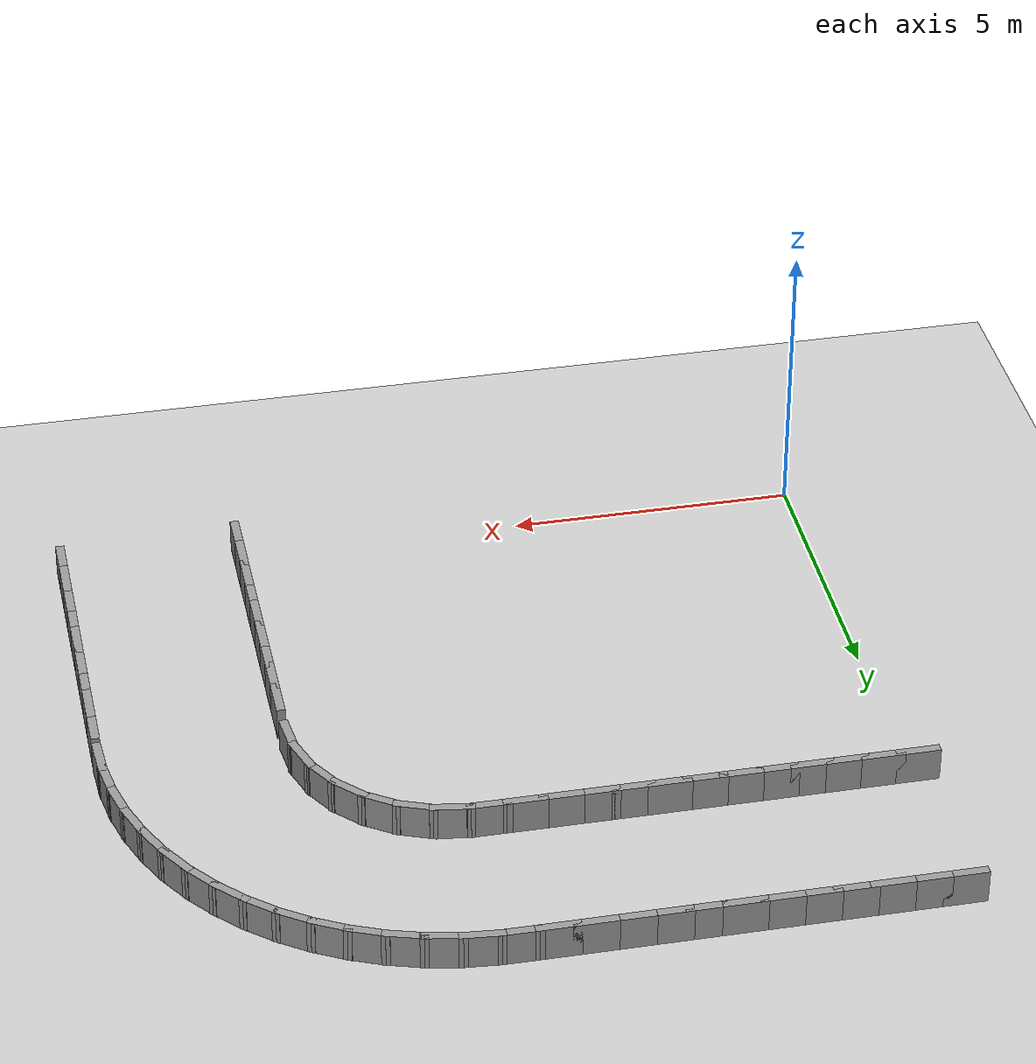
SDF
<sdf version="1.7">
 <world name="default">
  <model name="ground_plane">
   <static>1</static>
   <link name="link">
    <collision name="collision">
     <geometry><plane><normal>0 0 1</normal><size>100 100</size></plane></geometry>
     <surface><friction><ode><mu>100</mu><mu2>50</mu2></ode></friction></surface>
    </collision>
    <visual name="visual">
     <cast_shadows>0</cast_shadows>
     <geometry><plane><normal>0 0 1</normal><size>100 100</size></plane></geometry>
     <material>
      <script><uri>file://media/materials/scripts/gazebo.material</uri><name>Gazebo/Grey</name></script>
     </material>
    </visual>
   </link>
  </model>
  <model name="rand_rrect_01">
   <link name="Wall_0">
    <collision name="Wall_0_Collision">
     <geometry><box><size>0.7488 0.1500 0.6000</size></box></geometry>
     <pose>0 0 0.3000 0 -0 0</pose>
    </collision>
    <visual name="Wall_0_Visual">
     <pose>0 0 0.3000 0 -0 0</pose>
     <geometry><box><size>0.7488 0.1500 0.6000</size></box></geometry>
     <material>
      <script><uri>file://media/materials/scripts/gazebo.material</uri><name>Gazebo/Grey</name></script>
      <ambient>1 1 1 1</ambient>
     </material>
    </visual>
    <pose>10.0239 5.8810 0 0 -0 1.68030</pose>
   </link>
   <link name="Wall_1">
    <collision name="Wall_1_Collision">
     <geometry><box><size>0.7488 0.1500 0.6000</size></box></geometry>
     <pose>0 0 0.3000 0 -0 0</pose>
    </collision>
    <visual name="Wall_1_Visual">
     <pose>0 0 0.3000 0 -0 0</pose>
     <geometry><box><size>0.7488 0.1500 0.6000</size></box></geometry>
     <material>
      <script><uri>file://media/materials/scripts/gazebo.material</uri><name>Gazebo/Grey</name></script>
      <ambient>1 1 1 1</ambient>
     </material>
    </visual>
    <pose>9.8946 6.4620 0 0 -0 1.89928</pose>
   </link>
   <link name="Wall_2">
    <collision name="Wall_2_Collision">
     <geometry><box><size>0.7488 0.1500 0.6000</size></box></geometry>
     <pose>0 0 0.3000 0 -0 0</pose>
    </collision>
    <visual name="Wall_2_Visual">
     <pose>0 0 0.3000 0 -0 0</pose>
     <geometry><box><size>0.7488 0.1500 0.6000</size></box></geometry>
     <material>
      <script><uri>file://media/materials/scripts/gazebo.material</uri><name>Gazebo/Grey</name></script>
      <ambient>1 1 1 1</ambient>
     </material>
    </visual>
    <pose>9.6421 7.0011 0 0 -0 2.11827</pose>
   </link>
   <link name="Wall_3">
    <collision name="Wall_3_Collision">
     <geometry><box><size>0.7488 0.1500 0.6000</size></box></geometry>
     <pose>0 0 0.3000 0 -0 0</pose>
    </collision>
    <visual name="Wall_3_Visual">
     <pose>0 0 0.3000 0 -0 0</pose>
     <geometry><box><size>0.7488 0.1500 0.6000</size></box></geometry>
     <material>
      <script><uri>file://media/materials/scripts/gazebo.material</uri><name>Gazebo/Grey</name></script>
      <ambient>1 1 1 1</ambient>
     </material>
    </visual>
    <pose>9.2786 7.4724 0 0 -0 2.33728</pose>
   </link>
   <link name="Wall_4">
    <collision name="Wall_4_Collision">
     <geometry><box><size>0.7488 0.1500 0.6000</size></box></geometry>
     <pose>0 0 0.3000 0 -0 0</pose>
    </collision>
    <visual name="Wall_4_Visual">
     <pose>0 0 0.3000 0 -0 0</pose>
     <geometry><box><size>0.7488 0.1500 0.6000</size></box></geometry>
     <material>
      <script><uri>file://media/materials/scripts/gazebo.material</uri><name>Gazebo/Grey</name></script>
      <ambient>1 1 1 1</ambient>
     </material>
    </visual>
    <pose>8.8214 7.8535 0 0 -0 2.55626</pose>
   </link>
   <link name="Wall_5">
    <collision name="Wall_5_Collision">
     <geometry><box><size>0.7488 0.1500 0.6000</size></box></geometry>
     <pose>0 0 0.3000 0 -0 0</pose>
    </collision>
    <visual name="Wall_5_Visual">
     <pose>0 0 0.3000 0 -0 0</pose>
     <geometry><box><size>0.7488 0.1500 0.6000</size></box></geometry>
     <material>
      <script><uri>file://media/materials/scripts/gazebo.material</uri><name>Gazebo/Grey</name></script>
      <ambient>1 1 1 1</ambient>
     </material>
    </visual>
    <pose>8.2923 8.1261 0 0 -0 2.77525</pose>
   </link>
   <link name="Wall_6">
    <collision name="Wall_6_Collision">
     <geometry><box><size>0.7488 0.1500 0.6000</size></box></geometry>
     <pose>0 0 0.3000 0 -0 0</pose>
    </collision>
    <visual name="Wall_6_Visual">
     <pose>0 0 0.3000 0 -0 0</pose>
     <geometry><box><size>0.7488 0.1500 0.6000</size></box></geometry>
     <material>
      <script><uri>file://media/materials/scripts/gazebo.material</uri><name>Gazebo/Grey</name></script>
      <ambient>1 1 1 1</ambient>
     </material>
    </visual>
    <pose>7.7166 8.2773 0 0 -0 2.99426</pose>
   </link>
   <link name="Wall_7">
    <collision name="Wall_7_Collision">
     <geometry><box><size>0.7500 0.1500 0.6000</size></box></geometry>
     <pose>0 0 0.3000 0 -0 0</pose>
    </collision>
    <visual name="Wall_7_Visual">
     <pose>0 0 0.3000 0 -0 0</pose>
     <geometry><box><size>0.7500 0.1500 0.6000</size></box></geometry>
     <material>
      <script><uri>file://media/materials/scripts/gazebo.material</uri><name>Gazebo/Grey</name></script>
      <ambient>1 1 1 1</ambient>
     </material>
    </visual>
    <pose>7.1205 8.3223 0 0 -0 3.13831</pose>
   </link>
   <link name="Wall_8">
    <collision name="Wall_8_Collision">
     <geometry><box><size>0.7500 0.1500 0.6000</size></box></geometry>
     <pose>0 0 0.3000 0 -0 0</pose>
    </collision>
    <visual name="Wall_8_Visual">
     <pose>0 0 0.3000 0 -0 0</pose>
     <geometry><box><size>0.7500 0.1500 0.6000</size></box></geometry>
     <material>
      <script><uri>file://media/materials/scripts/gazebo.material</uri><name>Gazebo/Grey</name></script>
      <ambient>1 1 1 1</ambient>
     </material>
    </visual>
    <pose>6.5205 8.3232 0 0 -0 3.14159</pose>
   </link>
   <link name="Wall_9">
    <collision name="Wall_9_Collision">
     <geometry><box><size>0.7500 0.1500 0.6000</size></box></geometry>
     <pose>0 0 0.3000 0 -0 0</pose>
    </collision>
    <visual name="Wall_9_Visual">
     <pose>0 0 0.3000 0 -0 0</pose>
     <geometry><box><size>0.7500 0.1500 0.6000</size></box></geometry>
     <material>
      <script><uri>file://media/materials/scripts/gazebo.material</uri><name>Gazebo/Grey</name></script>
      <ambient>1 1 1 1</ambient>
     </material>
    </visual>
    <pose>5.9205 8.3232 0 0 -0 3.14159</pose>
   </link>
   <link name="Wall_10">
    <collision name="Wall_10_Collision">
     <geometry><box><size>0.7500 0.1500 0.6000</size></box></geometry>
     <pose>0 0 0.3000 0 -0 0</pose>
    </collision>
    <visual name="Wall_10_Visual">
     <pose>0 0 0.3000 0 -0 0</pose>
     <geometry><box><size>0.7500 0.1500 0.6000</size></box></geometry>
     <material>
      <script><uri>file://media/materials/scripts/gazebo.material</uri><name>Gazebo/Grey</name></script>
      <ambient>1 1 1 1</ambient>
     </material>
    </visual>
    <pose>5.3205 8.3232 0 0 -0 3.14159</pose>
   </link>
   <link name="Wall_11">
    <collision name="Wall_11_Collision">
     <geometry><box><size>0.7500 0.1500 0.6000</size></box></geometry>
     <pose>0 0 0.3000 0 -0 0</pose>
    </collision>
    <visual name="Wall_11_Visual">
     <pose>0 0 0.3000 0 -0 0</pose>
     <geometry><box><size>0.7500 0.1500 0.6000</size></box></geometry>
     <material>
      <script><uri>file://media/materials/scripts/gazebo.material</uri><name>Gazebo/Grey</name></script>
      <ambient>1 1 1 1</ambient>
     </material>
    </visual>
    <pose>4.7205 8.3232 0 0 -0 3.14159</pose>
   </link>
   <link name="Wall_12">
    <collision name="Wall_12_Collision">
     <geometry><box><size>0.7500 0.1500 0.6000</size></box></geometry>
     <pose>0 0 0.3000 0 -0 0</pose>
    </collision>
    <visual name="Wall_12_Visual">
     <pose>0 0 0.3000 0 -0 0</pose>
     <geometry><box><size>0.7500 0.1500 0.6000</size></box></geometry>
     <material>
      <script><uri>file://media/materials/scripts/gazebo.material</uri><name>Gazebo/Grey</name></script>
      <ambient>1 1 1 1</ambient>
     </material>
    </visual>
    <pose>4.1205 8.3232 0 0 -0 3.14159</pose>
   </link>
   <link name="Wall_13">
    <collision name="Wall_13_Collision">
     <geometry><box><size>0.7500 0.1500 0.6000</size></box></geometry>
     <pose>0 0 0.3000 0 -0 0</pose>
    </collision>
    <visual name="Wall_13_Visual">
     <pose>0 0 0.3000 0 -0 0</pose>
     <geometry><box><size>0.7500 0.1500 0.6000</size></box></geometry>
     <material>
      <script><uri>file://media/materials/scripts/gazebo.material</uri><name>Gazebo/Grey</name></script>
      <ambient>1 1 1 1</ambient>
     </material>
    </visual>
    <pose>3.5205 8.3232 0 0 -0 3.14159</pose>
   </link>
   <link name="Wall_14">
    <collision name="Wall_14_Collision">
     <geometry><box><size>0.7500 0.1500 0.6000</size></box></geometry>
     <pose>0 0 0.3000 0 -0 0</pose>
    </collision>
    <visual name="Wall_14_Visual">
     <pose>0 0 0.3000 0 -0 0</pose>
     <geometry><box><size>0.7500 0.1500 0.6000</size></box></geometry>
     <material>
      <script><uri>file://media/materials/scripts/gazebo.material</uri><name>Gazebo/Grey</name></script>
      <ambient>1 1 1 1</ambient>
     </material>
    </visual>
    <pose>2.9205 8.3232 0 0 -0 3.14159</pose>
   </link>
   <link name="Wall_15">
    <collision name="Wall_15_Collision">
     <geometry><box><size>0.7500 0.1500 0.6000</size></box></geometry>
     <pose>0 0 0.3000 0 -0 0</pose>
    </collision>
    <visual name="Wall_15_Visual">
     <pose>0 0 0.3000 0 -0 0</pose>
     <geometry><box><size>0.7500 0.1500 0.6000</size></box></geometry>
     <material>
      <script><uri>file://media/materials/scripts/gazebo.material</uri><name>Gazebo/Grey</name></script>
      <ambient>1 1 1 1</ambient>
     </material>
    </visual>
    <pose>2.3205 8.3232 0 0 -0 3.14159</pose>
   </link>
   <link name="Wall_16">
    <collision name="Wall_16_Collision">
     <geometry><box><size>0.7500 0.1500 0.6000</size></box></geometry>
     <pose>0 0 0.3000 0 -0 0</pose>
    </collision>
    <visual name="Wall_16_Visual">
     <pose>0 0 0.3000 0 -0 0</pose>
     <geometry><box><size>0.7500 0.1500 0.6000</size></box></geometry>
     <material>
      <script><uri>file://media/materials/scripts/gazebo.material</uri><name>Gazebo/Grey</name></script>
      <ambient>1 1 1 1</ambient>
     </material>
    </visual>
    <pose>1.7205 8.3232 0 0 -0 3.14159</pose>
   </link>
   <link name="Wall_17">
    <collision name="Wall_17_Collision">
     <geometry><box><size>0.7500 0.1500 0.6000</size></box></geometry>
     <pose>0 0 0.3000 0 -0 0</pose>
    </collision>
    <visual name="Wall_17_Visual">
     <pose>0 0 0.3000 0 -0 0</pose>
     <geometry><box><size>0.7500 0.1500 0.6000</size></box></geometry>
     <material>
      <script><uri>file://media/materials/scripts/gazebo.material</uri><name>Gazebo/Grey</name></script>
      <ambient>1 1 1 1</ambient>
     </material>
    </visual>
    <pose>1.1205 8.3232 0 0 -0 3.14159</pose>
   </link>
   <link name="Wall_18">
    <collision name="Wall_18_Collision">
     <geometry><box><size>0.7500 0.1500 0.6000</size></box></geometry>
     <pose>0 0 0.3000 0 -0 0</pose>
    </collision>
    <visual name="Wall_18_Visual">
     <pose>0 0 0.3000 0 -0 0</pose>
     <geometry><box><size>0.7500 0.1500 0.6000</size></box></geometry>
     <material>
      <script><uri>file://media/materials/scripts/gazebo.material</uri><name>Gazebo/Grey</name></script>
      <ambient>1 1 1 1</ambient>
     </material>
    </visual>
    <pose>0.5205 8.3232 0 0 -0 3.14159</pose>
   </link>
   <link name="Wall_19">
    <collision name="Wall_19_Collision">
     <geometry><box><size>0.7500 0.1500 0.6000</size></box></geometry>
     <pose>0 0 0.3000 0 -0 0</pose>
    </collision>
    <visual name="Wall_19_Visual">
     <pose>0 0 0.3000 0 -0 0</pose>
     <geometry><box><size>0.7500 0.1500 0.6000</size></box></geometry>
     <material>
      <script><uri>file://media/materials/scripts/gazebo.material</uri><name>Gazebo/Grey</name></script>
      <ambient>1 1 1 1</ambient>
     </material>
    </visual>
    <pose>-0.0795 8.3232 0 0 -0 3.14159</pose>
   </link>
   <link name="Wall_105">
    <collision name="Wall_105_Collision">
     <geometry><box><size>0.7500 0.1500 0.6000</size></box></geometry>
     <pose>0 0 0.3000 0 -0 0</pose>
    </collision>
    <visual name="Wall_105_Visual">
     <pose>0 0 0.3000 0 -0 0</pose>
     <geometry><box><size>0.7500 0.1500 0.6000</size></box></geometry>
     <material>
      <script><uri>file://media/materials/scripts/gazebo.material</uri><name>Gazebo/Grey</name></script>
      <ambient>1 1 1 1</ambient>
     </material>
    </visual>
    <pose>10.0566 0.0678 0 0 -0 1.57080</pose>
   </link>
   <link name="Wall_106">
    <collision name="Wall_106_Collision">
     <geometry><box><size>0.7500 0.1500 0.6000</size></box></geometry>
     <pose>0 0 0.3000 0 -0 0</pose>
    </collision>
    <visual name="Wall_106_Visual">
     <pose>0 0 0.3000 0 -0 0</pose>
     <geometry><box><size>0.7500 0.1500 0.6000</size></box></geometry>
     <material>
      <script><uri>file://media/materials/scripts/gazebo.material</uri><name>Gazebo/Grey</name></script>
      <ambient>1 1 1 1</ambient>
     </material>
    </visual>
    <pose>10.0566 0.6678 0 0 -0 1.57080</pose>
   </link>
   <link name="Wall_107">
    <collision name="Wall_107_Collision">
     <geometry><box><size>0.7500 0.1500 0.6000</size></box></geometry>
     <pose>0 0 0.3000 0 -0 0</pose>
    </collision>
    <visual name="Wall_107_Visual">
     <pose>0 0 0.3000 0 -0 0</pose>
     <geometry><box><size>0.7500 0.1500 0.6000</size></box></geometry>
     <material>
      <script><uri>file://media/materials/scripts/gazebo.material</uri><name>Gazebo/Grey</name></script>
      <ambient>1 1 1 1</ambient>
     </material>
    </visual>
    <pose>10.0566 1.2678 0 0 -0 1.57080</pose>
   </link>
   <link name="Wall_108">
    <collision name="Wall_108_Collision">
     <geometry><box><size>0.7500 0.1500 0.6000</size></box></geometry>
     <pose>0 0 0.3000 0 -0 0</pose>
    </collision>
    <visual name="Wall_108_Visual">
     <pose>0 0 0.3000 0 -0 0</pose>
     <geometry><box><size>0.7500 0.1500 0.6000</size></box></geometry>
     <material>
      <script><uri>file://media/materials/scripts/gazebo.material</uri><name>Gazebo/Grey</name></script>
      <ambient>1 1 1 1</ambient>
     </material>
    </visual>
    <pose>10.0566 1.8678 0 0 -0 1.57080</pose>
   </link>
   <link name="Wall_109">
    <collision name="Wall_109_Collision">
     <geometry><box><size>0.7500 0.1500 0.6000</size></box></geometry>
     <pose>0 0 0.3000 0 -0 0</pose>
    </collision>
    <visual name="Wall_109_Visual">
     <pose>0 0 0.3000 0 -0 0</pose>
     <geometry><box><size>0.7500 0.1500 0.6000</size></box></geometry>
     <material>
      <script><uri>file://media/materials/scripts/gazebo.material</uri><name>Gazebo/Grey</name></script>
      <ambient>1 1 1 1</ambient>
     </material>
    </visual>
    <pose>10.0566 2.4678 0 0 -0 1.57080</pose>
   </link>
   <link name="Wall_110">
    <collision name="Wall_110_Collision">
     <geometry><box><size>0.7500 0.1500 0.6000</size></box></geometry>
     <pose>0 0 0.3000 0 -0 0</pose>
    </collision>
    <visual name="Wall_110_Visual">
     <pose>0 0 0.3000 0 -0 0</pose>
     <geometry><box><size>0.7500 0.1500 0.6000</size></box></geometry>
     <material>
      <script><uri>file://media/materials/scripts/gazebo.material</uri><name>Gazebo/Grey</name></script>
      <ambient>1 1 1 1</ambient>
     </material>
    </visual>
    <pose>10.0566 3.0678 0 0 -0 1.57080</pose>
   </link>
   <link name="Wall_111">
    <collision name="Wall_111_Collision">
     <geometry><box><size>0.7500 0.1500 0.6000</size></box></geometry>
     <pose>0 0 0.3000 0 -0 0</pose>
    </collision>
    <visual name="Wall_111_Visual">
     <pose>0 0 0.3000 0 -0 0</pose>
     <geometry><box><size>0.7500 0.1500 0.6000</size></box></geometry>
     <material>
      <script><uri>file://media/materials/scripts/gazebo.material</uri><name>Gazebo/Grey</name></script>
      <ambient>1 1 1 1</ambient>
     </material>
    </visual>
    <pose>10.0566 3.6678 0 0 -0 1.57080</pose>
   </link>
   <link name="Wall_112">
    <collision name="Wall_112_Collision">
     <geometry><box><size>0.7500 0.1500 0.6000</size></box></geometry>
     <pose>0 0 0.3000 0 -0 0</pose>
    </collision>
    <visual name="Wall_112_Visual">
     <pose>0 0 0.3000 0 -0 0</pose>
     <geometry><box><size>0.7500 0.1500 0.6000</size></box></geometry>
     <material>
      <script><uri>file://media/materials/scripts/gazebo.material</uri><name>Gazebo/Grey</name></script>
      <ambient>1 1 1 1</ambient>
     </material>
    </visual>
    <pose>10.0566 4.2678 0 0 -0 1.57080</pose>
   </link>
   <link name="Wall_113">
    <collision name="Wall_113_Collision">
     <geometry><box><size>0.7500 0.1500 0.6000</size></box></geometry>
     <pose>0 0 0.3000 0 -0 0</pose>
    </collision>
    <visual name="Wall_113_Visual">
     <pose>0 0 0.3000 0 -0 0</pose>
     <geometry><box><size>0.7500 0.1500 0.6000</size></box></geometry>
     <material>
      <script><uri>file://media/materials/scripts/gazebo.material</uri><name>Gazebo/Grey</name></script>
      <ambient>1 1 1 1</ambient>
     </material>
    </visual>
    <pose>10.0566 4.8678 0 0 -0 1.57080</pose>
   </link>
   <link name="Wall_114">
    <collision name="Wall_114_Collision">
     <geometry><box><size>0.7497 0.1500 0.6000</size></box></geometry>
     <pose>0 0 0.3000 0 -0 0</pose>
    </collision>
    <visual name="Wall_114_Visual">
     <pose>0 0 0.3000 0 -0 0</pose>
     <geometry><box><size>0.7497 0.1500 0.6000</size></box></geometry>
     <material>
      <script><uri>file://media/materials/scripts/gazebo.material</uri><name>Gazebo/Grey</name></script>
      <ambient>1 1 1 1</ambient>
     </material>
    </visual>
    <pose>13.1672 5.8829 0 0 -0 1.62196</pose>
   </link>
   <link name="Wall_115">
    <collision name="Wall_115_Collision">
     <geometry><box><size>0.7497 0.1500 0.6000</size></box></geometry>
     <pose>0 0 0.3000 0 -0 0</pose>
    </collision>
    <visual name="Wall_115_Visual">
     <pose>0 0 0.3000 0 -0 0</pose>
     <geometry><box><size>0.7497 0.1500 0.6000</size></box></geometry>
     <material>
      <script><uri>file://media/materials/scripts/gazebo.material</uri><name>Gazebo/Grey</name></script>
      <ambient>1 1 1 1</ambient>
     </material>
    </visual>
    <pose>13.1061 6.4787 0 0 -0 1.72423</pose>
   </link>
   <link name="Wall_116">
    <collision name="Wall_116_Collision">
     <geometry><box><size>0.7497 0.1500 0.6000</size></box></geometry>
     <pose>0 0 0.3000 0 -0 0</pose>
    </collision>
    <visual name="Wall_116_Visual">
     <pose>0 0 0.3000 0 -0 0</pose>
     <geometry><box><size>0.7497 0.1500 0.6000</size></box></geometry>
     <material>
      <script><uri>file://media/materials/scripts/gazebo.material</uri><name>Gazebo/Grey</name></script>
      <ambient>1 1 1 1</ambient>
     </material>
    </visual>
    <pose>12.9844 7.0652 0 0 -0 1.82651</pose>
   </link>
   <link name="Wall_117">
    <collision name="Wall_117_Collision">
     <geometry><box><size>0.7497 0.1500 0.6000</size></box></geometry>
     <pose>0 0 0.3000 0 -0 0</pose>
    </collision>
    <visual name="Wall_117_Visual">
     <pose>0 0 0.3000 0 -0 0</pose>
     <geometry><box><size>0.7497 0.1500 0.6000</size></box></geometry>
     <material>
      <script><uri>file://media/materials/scripts/gazebo.material</uri><name>Gazebo/Grey</name></script>
      <ambient>1 1 1 1</ambient>
     </material>
    </visual>
    <pose>12.8035 7.6362 0 0 -0 1.92880</pose>
   </link>
   <link name="Wall_118">
    <collision name="Wall_118_Collision">
     <geometry><box><size>0.7497 0.1500 0.6000</size></box></geometry>
     <pose>0 0 0.3000 0 -0 0</pose>
    </collision>
    <visual name="Wall_118_Visual">
     <pose>0 0 0.3000 0 -0 0</pose>
     <geometry><box><size>0.7497 0.1500 0.6000</size></box></geometry>
     <material>
      <script><uri>file://media/materials/scripts/gazebo.material</uri><name>Gazebo/Grey</name></script>
      <ambient>1 1 1 1</ambient>
     </material>
    </visual>
    <pose>12.5652 8.1857 0 0 -0 2.03111</pose>
   </link>
   <link name="Wall_119">
    <collision name="Wall_119_Collision">
     <geometry><box><size>0.7497 0.1500 0.6000</size></box></geometry>
     <pose>0 0 0.3000 0 -0 0</pose>
    </collision>
    <visual name="Wall_119_Visual">
     <pose>0 0 0.3000 0 -0 0</pose>
     <geometry><box><size>0.7497 0.1500 0.6000</size></box></geometry>
     <material>
      <script><uri>file://media/materials/scripts/gazebo.material</uri><name>Gazebo/Grey</name></script>
      <ambient>1 1 1 1</ambient>
     </material>
    </visual>
    <pose>12.2720 8.7080 0 0 -0 2.13338</pose>
   </link>
   <link name="Wall_120">
    <collision name="Wall_120_Collision">
     <geometry><box><size>0.7497 0.1500 0.6000</size></box></geometry>
     <pose>0 0 0.3000 0 -0 0</pose>
    </collision>
    <visual name="Wall_120_Visual">
     <pose>0 0 0.3000 0 -0 0</pose>
     <geometry><box><size>0.7497 0.1500 0.6000</size></box></geometry>
     <material>
      <script><uri>file://media/materials/scripts/gazebo.material</uri><name>Gazebo/Grey</name></script>
      <ambient>1 1 1 1</ambient>
     </material>
    </visual>
    <pose>11.9271 9.1977 0 0 -0 2.23566</pose>
   </link>
   <link name="Wall_121">
    <collision name="Wall_121_Collision">
     <geometry><box><size>0.7497 0.1500 0.6000</size></box></geometry>
     <pose>0 0 0.3000 0 -0 0</pose>
    </collision>
    <visual name="Wall_121_Visual">
     <pose>0 0 0.3000 0 -0 0</pose>
     <geometry><box><size>0.7497 0.1500 0.6000</size></box></geometry>
     <material>
      <script><uri>file://media/materials/scripts/gazebo.material</uri><name>Gazebo/Grey</name></script>
      <ambient>1 1 1 1</ambient>
     </material>
    </visual>
    <pose>11.5339 9.6495 0 0 -0 2.33797</pose>
   </link>
   <link name="Wall_122">
    <collision name="Wall_122_Collision">
     <geometry><box><size>0.7497 0.1500 0.6000</size></box></geometry>
     <pose>0 0 0.3000 0 -0 0</pose>
    </collision>
    <visual name="Wall_122_Visual">
     <pose>0 0 0.3000 0 -0 0</pose>
     <geometry><box><size>0.7497 0.1500 0.6000</size></box></geometry>
     <material>
      <script><uri>file://media/materials/scripts/gazebo.material</uri><name>Gazebo/Grey</name></script>
      <ambient>1 1 1 1</ambient>
     </material>
    </visual>
    <pose>11.0967 10.0589 0 0 -0 2.44026</pose>
   </link>
   <link name="Wall_123">
    <collision name="Wall_123_Collision">
     <geometry><box><size>0.7497 0.1500 0.6000</size></box></geometry>
     <pose>0 0 0.3000 0 -0 0</pose>
    </collision>
    <visual name="Wall_123_Visual">
     <pose>0 0 0.3000 0 -0 0</pose>
     <geometry><box><size>0.7497 0.1500 0.6000</size></box></geometry>
     <material>
      <script><uri>file://media/materials/scripts/gazebo.material</uri><name>Gazebo/Grey</name></script>
      <ambient>1 1 1 1</ambient>
     </material>
    </visual>
    <pose>10.6199 10.4214 0 0 -0 2.54253</pose>
   </link>
   <link name="Wall_124">
    <collision name="Wall_124_Collision">
     <geometry><box><size>0.7497 0.1500 0.6000</size></box></geometry>
     <pose>0 0 0.3000 0 -0 0</pose>
    </collision>
    <visual name="Wall_124_Visual">
     <pose>0 0 0.3000 0 -0 0</pose>
     <geometry><box><size>0.7497 0.1500 0.6000</size></box></geometry>
     <material>
      <script><uri>file://media/materials/scripts/gazebo.material</uri><name>Gazebo/Grey</name></script>
      <ambient>1 1 1 1</ambient>
     </material>
    </visual>
    <pose>10.1087 10.7335 0 0 -0 2.64481</pose>
   </link>
   <link name="Wall_125">
    <collision name="Wall_125_Collision">
     <geometry><box><size>0.7497 0.1500 0.6000</size></box></geometry>
     <pose>0 0 0.3000 0 -0 0</pose>
    </collision>
    <visual name="Wall_125_Visual">
     <pose>0 0 0.3000 0 -0 0</pose>
     <geometry><box><size>0.7497 0.1500 0.6000</size></box></geometry>
     <material>
      <script><uri>file://media/materials/scripts/gazebo.material</uri><name>Gazebo/Grey</name></script>
      <ambient>1 1 1 1</ambient>
     </material>
    </visual>
    <pose>9.5682 10.9916 0 0 -0 2.74713</pose>
   </link>
   <link name="Wall_126">
    <collision name="Wall_126_Collision">
     <geometry><box><size>0.7497 0.1500 0.6000</size></box></geometry>
     <pose>0 0 0.3000 0 -0 0</pose>
    </collision>
    <visual name="Wall_126_Visual">
     <pose>0 0 0.3000 0 -0 0</pose>
     <geometry><box><size>0.7497 0.1500 0.6000</size></box></geometry>
     <material>
      <script><uri>file://media/materials/scripts/gazebo.material</uri><name>Gazebo/Grey</name></script>
      <ambient>1 1 1 1</ambient>
     </material>
    </visual>
    <pose>9.0042 11.1932 0 0 -0 2.84940</pose>
   </link>
   <link name="Wall_127">
    <collision name="Wall_127_Collision">
     <geometry><box><size>0.7497 0.1500 0.6000</size></box></geometry>
     <pose>0 0 0.3000 0 -0 0</pose>
    </collision>
    <visual name="Wall_127_Visual">
     <pose>0 0 0.3000 0 -0 0</pose>
     <geometry><box><size>0.7497 0.1500 0.6000</size></box></geometry>
     <material>
      <script><uri>file://media/materials/scripts/gazebo.material</uri><name>Gazebo/Grey</name></script>
      <ambient>1 1 1 1</ambient>
     </material>
    </visual>
    <pose>8.4226 11.3362 0 0 -0 2.95168</pose>
   </link>
   <link name="Wall_128">
    <collision name="Wall_128_Collision">
     <geometry><box><size>0.7497 0.1500 0.6000</size></box></geometry>
     <pose>0 0 0.3000 0 -0 0</pose>
    </collision>
    <visual name="Wall_128_Visual">
     <pose>0 0 0.3000 0 -0 0</pose>
     <geometry><box><size>0.7497 0.1500 0.6000</size></box></geometry>
     <material>
      <script><uri>file://media/materials/scripts/gazebo.material</uri><name>Gazebo/Grey</name></script>
      <ambient>1 1 1 1</ambient>
     </material>
    </visual>
    <pose>7.8294 11.4191 0 0 -0 3.05397</pose>
   </link>
   <link name="Wall_129">
    <collision name="Wall_129_Collision">
     <geometry><box><size>0.7500 0.1500 0.6000</size></box></geometry>
     <pose>0 0 0.3000 0 -0 0</pose>
    </collision>
    <visual name="Wall_129_Visual">
     <pose>0 0 0.3000 0 -0 0</pose>
     <geometry><box><size>0.7500 0.1500 0.6000</size></box></geometry>
     <material>
      <script><uri>file://media/materials/scripts/gazebo.material</uri><name>Gazebo/Grey</name></script>
      <ambient>1 1 1 1</ambient>
     </material>
    </visual>
    <pose>7.2307 11.4473 0 0 -0 3.13508</pose>
   </link>
   <link name="Wall_130">
    <collision name="Wall_130_Collision">
     <geometry><box><size>0.7500 0.1500 0.6000</size></box></geometry>
     <pose>0 0 0.3000 0 -0 0</pose>
    </collision>
    <visual name="Wall_130_Visual">
     <pose>0 0 0.3000 0 -0 0</pose>
     <geometry><box><size>0.7500 0.1500 0.6000</size></box></geometry>
     <material>
      <script><uri>file://media/materials/scripts/gazebo.material</uri><name>Gazebo/Grey</name></script>
      <ambient>1 1 1 1</ambient>
     </material>
    </visual>
    <pose>6.6307 11.4492 0 0 -0 3.14159</pose>
   </link>
   <link name="Wall_131">
    <collision name="Wall_131_Collision">
     <geometry><box><size>0.7500 0.1500 0.6000</size></box></geometry>
     <pose>0 0 0.3000 0 -0 0</pose>
    </collision>
    <visual name="Wall_131_Visual">
     <pose>0 0 0.3000 0 -0 0</pose>
     <geometry><box><size>0.7500 0.1500 0.6000</size></box></geometry>
     <material>
      <script><uri>file://media/materials/scripts/gazebo.material</uri><name>Gazebo/Grey</name></script>
      <ambient>1 1 1 1</ambient>
     </material>
    </visual>
    <pose>6.0307 11.4492 0 0 -0 3.14159</pose>
   </link>
   <link name="Wall_132">
    <collision name="Wall_132_Collision">
     <geometry><box><size>0.7500 0.1500 0.6000</size></box></geometry>
     <pose>0 0 0.3000 0 -0 0</pose>
    </collision>
    <visual name="Wall_132_Visual">
     <pose>0 0 0.3000 0 -0 0</pose>
     <geometry><box><size>0.7500 0.1500 0.6000</size></box></geometry>
     <material>
      <script><uri>file://media/materials/scripts/gazebo.material</uri><name>Gazebo/Grey</name></script>
      <ambient>1 1 1 1</ambient>
     </material>
    </visual>
    <pose>5.4307 11.4492 0 0 -0 3.14159</pose>
   </link>
   <link name="Wall_133">
    <collision name="Wall_133_Collision">
     <geometry><box><size>0.7500 0.1500 0.6000</size></box></geometry>
     <pose>0 0 0.3000 0 -0 0</pose>
    </collision>
    <visual name="Wall_133_Visual">
     <pose>0 0 0.3000 0 -0 0</pose>
     <geometry><box><size>0.7500 0.1500 0.6000</size></box></geometry>
     <material>
      <script><uri>file://media/materials/scripts/gazebo.material</uri><name>Gazebo/Grey</name></script>
      <ambient>1 1 1 1</ambient>
     </material>
    </visual>
    <pose>4.8307 11.4492 0 0 -0 3.14159</pose>
   </link>
   <link name="Wall_134">
    <collision name="Wall_134_Collision">
     <geometry><box><size>0.7500 0.1500 0.6000</size></box></geometry>
     <pose>0 0 0.3000 0 -0 0</pose>
    </collision>
    <visual name="Wall_134_Visual">
     <pose>0 0 0.3000 0 -0 0</pose>
     <geometry><box><size>0.7500 0.1500 0.6000</size></box></geometry>
     <material>
      <script><uri>file://media/materials/scripts/gazebo.material</uri><name>Gazebo/Grey</name></script>
      <ambient>1 1 1 1</ambient>
     </material>
    </visual>
    <pose>4.2307 11.4492 0 0 -0 3.14159</pose>
   </link>
   <link name="Wall_135">
    <collision name="Wall_135_Collision">
     <geometry><box><size>0.7500 0.1500 0.6000</size></box></geometry>
     <pose>0 0 0.3000 0 -0 0</pose>
    </collision>
    <visual name="Wall_135_Visual">
     <pose>0 0 0.3000 0 -0 0</pose>
     <geometry><box><size>0.7500 0.1500 0.6000</size></box></geometry>
     <material>
      <script><uri>file://media/materials/scripts/gazebo.material</uri><name>Gazebo/Grey</name></script>
      <ambient>1 1 1 1</ambient>
     </material>
    </visual>
    <pose>3.6307 11.4492 0 0 -0 3.14159</pose>
   </link>
   <link name="Wall_136">
    <collision name="Wall_136_Collision">
     <geometry><box><size>0.7500 0.1500 0.6000</size></box></geometry>
     <pose>0 0 0.3000 0 -0 0</pose>
    </collision>
    <visual name="Wall_136_Visual">
     <pose>0 0 0.3000 0 -0 0</pose>
     <geometry><box><size>0.7500 0.1500 0.6000</size></box></geometry>
     <material>
      <script><uri>file://media/materials/scripts/gazebo.material</uri><name>Gazebo/Grey</name></script>
      <ambient>1 1 1 1</ambient>
     </material>
    </visual>
    <pose>3.0307 11.4492 0 0 -0 3.14159</pose>
   </link>
   <link name="Wall_137">
    <collision name="Wall_137_Collision">
     <geometry><box><size>0.7500 0.1500 0.6000</size></box></geometry>
     <pose>0 0 0.3000 0 -0 0</pose>
    </collision>
    <visual name="Wall_137_Visual">
     <pose>0 0 0.3000 0 -0 0</pose>
     <geometry><box><size>0.7500 0.1500 0.6000</size></box></geometry>
     <material>
      <script><uri>file://media/materials/scripts/gazebo.material</uri><name>Gazebo/Grey</name></script>
      <ambient>1 1 1 1</ambient>
     </material>
    </visual>
    <pose>2.4307 11.4492 0 0 -0 3.14159</pose>
   </link>
   <link name="Wall_138">
    <collision name="Wall_138_Collision">
     <geometry><box><size>0.7500 0.1500 0.6000</size></box></geometry>
     <pose>0 0 0.3000 0 -0 0</pose>
    </collision>
    <visual name="Wall_138_Visual">
     <pose>0 0 0.3000 0 -0 0</pose>
     <geometry><box><size>0.7500 0.1500 0.6000</size></box></geometry>
     <material>
      <script><uri>file://media/materials/scripts/gazebo.material</uri><name>Gazebo/Grey</name></script>
      <ambient>1 1 1 1</ambient>
     </material>
    </visual>
    <pose>1.8307 11.4492 0 0 -0 3.14159</pose>
   </link>
   <link name="Wall_139">
    <collision name="Wall_139_Collision">
     <geometry><box><size>0.7500 0.1500 0.6000</size></box></geometry>
     <pose>0 0 0.3000 0 -0 0</pose>
    </collision>
    <visual name="Wall_139_Visual">
     <pose>0 0 0.3000 0 -0 0</pose>
     <geometry><box><size>0.7500 0.1500 0.6000</size></box></geometry>
     <material>
      <script><uri>file://media/materials/scripts/gazebo.material</uri><name>Gazebo/Grey</name></script>
      <ambient>1 1 1 1</ambient>
     </material>
    </visual>
    <pose>1.2307 11.4492 0 0 -0 3.14159</pose>
   </link>
   <link name="Wall_140">
    <collision name="Wall_140_Collision">
     <geometry><box><size>0.7500 0.1500 0.6000</size></box></geometry>
     <pose>0 0 0.3000 0 -0 0</pose>
    </collision>
    <visual name="Wall_140_Visual">
     <pose>0 0 0.3000 0 -0 0</pose>
     <geometry><box><size>0.7500 0.1500 0.6000</size></box></geometry>
     <material>
      <script><uri>file://media/materials/scripts/gazebo.material</uri><name>Gazebo/Grey</name></script>
      <ambient>1 1 1 1</ambient>
     </material>
    </visual>
    <pose>0.6307 11.4492 0 0 -0 3.14159</pose>
   </link>
   <link name="Wall_141">
    <collision name="Wall_141_Collision">
     <geometry><box><size>0.7500 0.1500 0.6000</size></box></geometry>
     <pose>0 0 0.3000 0 -0 0</pose>
    </collision>
    <visual name="Wall_141_Visual">
     <pose>0 0 0.3000 0 -0 0</pose>
     <geometry><box><size>0.7500 0.1500 0.6000</size></box></geometry>
     <material>
      <script><uri>file://media/materials/scripts/gazebo.material</uri><name>Gazebo/Grey</name></script>
      <ambient>1 1 1 1</ambient>
     </material>
    </visual>
    <pose>0.0307 11.4492 0 0 -0 3.14159</pose>
   </link>
   <link name="Wall_252">
    <collision name="Wall_252_Collision">
     <geometry><box><size>0.7500 0.1500 0.6000</size></box></geometry>
     <pose>0 0 0.3000 0 -0 0</pose>
    </collision>
    <visual name="Wall_252_Visual">
     <pose>0 0 0.3000 0 -0 0</pose>
     <geometry><box><size>0.7500 0.1500 0.6000</size></box></geometry>
     <material>
      <script><uri>file://media/materials/scripts/gazebo.material</uri><name>Gazebo/Grey</name></script>
      <ambient>1 1 1 1</ambient>
     </material>
    </visual>
    <pose>13.1826 0.2268 0 0 -0 1.57080</pose>
   </link>
   <link name="Wall_253">
    <collision name="Wall_253_Collision">
     <geometry><box><size>0.7500 0.1500 0.6000</size></box></geometry>
     <pose>0 0 0.3000 0 -0 0</pose>
    </collision>
    <visual name="Wall_253_Visual">
     <pose>0 0 0.3000 0 -0 0</pose>
     <geometry><box><size>0.7500 0.1500 0.6000</size></box></geometry>
     <material>
      <script><uri>file://media/materials/scripts/gazebo.material</uri><name>Gazebo/Grey</name></script>
      <ambient>1 1 1 1</ambient>
     </material>
    </visual>
    <pose>13.1826 0.8268 0 0 -0 1.57080</pose>
   </link>
   <link name="Wall_254">
    <collision name="Wall_254_Collision">
     <geometry><box><size>0.7500 0.1500 0.6000</size></box></geometry>
     <pose>0 0 0.3000 0 -0 0</pose>
    </collision>
    <visual name="Wall_254_Visual">
     <pose>0 0 0.3000 0 -0 0</pose>
     <geometry><box><size>0.7500 0.1500 0.6000</size></box></geometry>
     <material>
      <script><uri>file://media/materials/scripts/gazebo.material</uri><name>Gazebo/Grey</name></script>
      <ambient>1 1 1 1</ambient>
     </material>
    </visual>
    <pose>13.1826 1.4268 0 0 -0 1.57080</pose>
   </link>
   <link name="Wall_255">
    <collision name="Wall_255_Collision">
     <geometry><box><size>0.7500 0.1500 0.6000</size></box></geometry>
     <pose>0 0 0.3000 0 -0 0</pose>
    </collision>
    <visual name="Wall_255_Visual">
     <pose>0 0 0.3000 0 -0 0</pose>
     <geometry><box><size>0.7500 0.1500 0.6000</size></box></geometry>
     <material>
      <script><uri>file://media/materials/scripts/gazebo.material</uri><name>Gazebo/Grey</name></script>
      <ambient>1 1 1 1</ambient>
     </material>
    </visual>
    <pose>13.1826 2.0268 0 0 -0 1.57080</pose>
   </link>
   <link name="Wall_256">
    <collision name="Wall_256_Collision">
     <geometry><box><size>0.7500 0.1500 0.6000</size></box></geometry>
     <pose>0 0 0.3000 0 -0 0</pose>
    </collision>
    <visual name="Wall_256_Visual">
     <pose>0 0 0.3000 0 -0 0</pose>
     <geometry><box><size>0.7500 0.1500 0.6000</size></box></geometry>
     <material>
      <script><uri>file://media/materials/scripts/gazebo.material</uri><name>Gazebo/Grey</name></script>
      <ambient>1 1 1 1</ambient>
     </material>
    </visual>
    <pose>13.1826 2.6268 0 0 -0 1.57080</pose>
   </link>
   <link name="Wall_257">
    <collision name="Wall_257_Collision">
     <geometry><box><size>0.7500 0.1500 0.6000</size></box></geometry>
     <pose>0 0 0.3000 0 -0 0</pose>
    </collision>
    <visual name="Wall_257_Visual">
     <pose>0 0 0.3000 0 -0 0</pose>
     <geometry><box><size>0.7500 0.1500 0.6000</size></box></geometry>
     <material>
      <script><uri>file://media/materials/scripts/gazebo.material</uri><name>Gazebo/Grey</name></script>
      <ambient>1 1 1 1</ambient>
     </material>
    </visual>
    <pose>13.1826 3.2268 0 0 -0 1.57080</pose>
   </link>
   <link name="Wall_258">
    <collision name="Wall_258_Collision">
     <geometry><box><size>0.7500 0.1500 0.6000</size></box></geometry>
     <pose>0 0 0.3000 0 -0 0</pose>
    </collision>
    <visual name="Wall_258_Visual">
     <pose>0 0 0.3000 0 -0 0</pose>
     <geometry><box><size>0.7500 0.1500 0.6000</size></box></geometry>
     <material>
      <script><uri>file://media/materials/scripts/gazebo.material</uri><name>Gazebo/Grey</name></script>
      <ambient>1 1 1 1</ambient>
     </material>
    </visual>
    <pose>13.1826 3.8268 0 0 -0 1.57080</pose>
   </link>
   <link name="Wall_259">
    <collision name="Wall_259_Collision">
     <geometry><box><size>0.7500 0.1500 0.6000</size></box></geometry>
     <pose>0 0 0.3000 0 -0 0</pose>
    </collision>
    <visual name="Wall_259_Visual">
     <pose>0 0 0.3000 0 -0 0</pose>
     <geometry><box><size>0.7500 0.1500 0.6000</size></box></geometry>
     <material>
      <script><uri>file://media/materials/scripts/gazebo.material</uri><name>Gazebo/Grey</name></script>
      <ambient>1 1 1 1</ambient>
     </material>
    </visual>
    <pose>13.1826 4.4268 0 0 -0 1.57080</pose>
   </link>
   <link name="Wall_260">
    <collision name="Wall_260_Collision">
     <geometry><box><size>0.7500 0.1500 0.6000</size></box></geometry>
     <pose>0 0 0.3000 0 -0 0</pose>
    </collision>
    <visual name="Wall_260_Visual">
     <pose>0 0 0.3000 0 -0 0</pose>
     <geometry><box><size>0.7500 0.1500 0.6000</size></box></geometry>
     <material>
      <script><uri>file://media/materials/scripts/gazebo.material</uri><name>Gazebo/Grey</name></script>
      <ambient>1 1 1 1</ambient>
     </material>
    </visual>
    <pose>13.1826 5.0268 0 0 -0 1.57080</pose>
   </link>
   <static>1</static>
  </model>
 </world>
</sdf>
